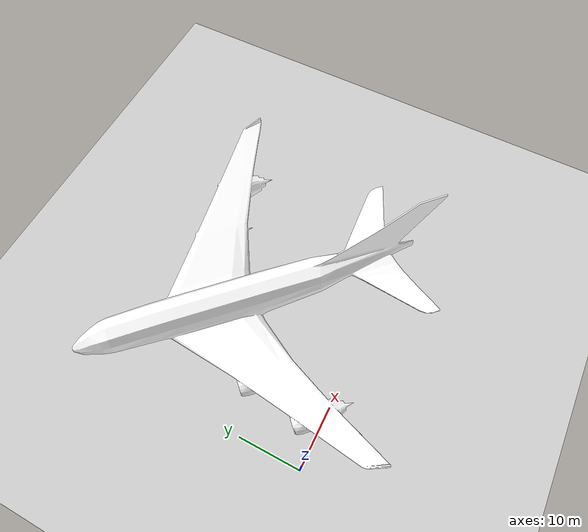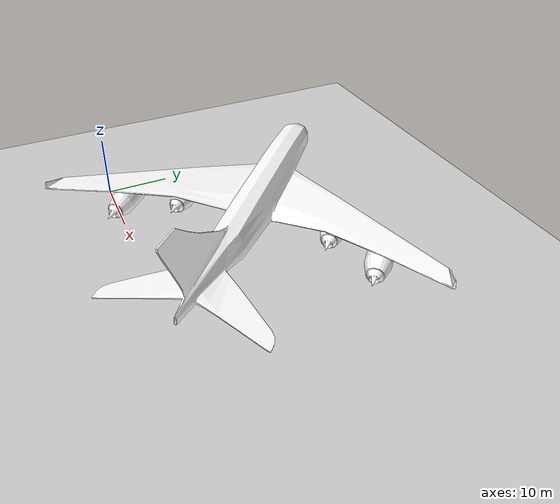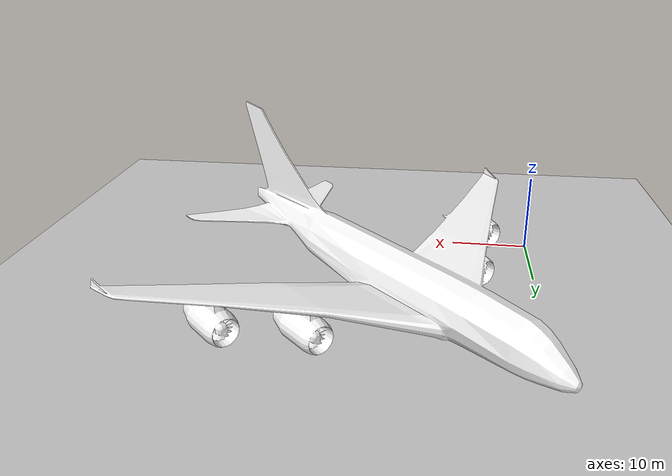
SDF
<?xml version="1.0" ?>
<sdf version="1.6">
  <world name="empty">
    <physics name="1ms" type="ignored">
      <max_step_size>0.001</max_step_size>
      <real_time_factor>1.0</real_time_factor>
    </physics>

    <plugin filename="ignition-gazebo-contact-system" name="gz::sim::systems::Contact" />
    <plugin filename="ignition-gazebo-imu-system" name="gz::sim::systems::Imu" />
    <plugin filename="ignition-gazebo-physics-system" name="gz::sim::systems::Physics" />
    <plugin filename="ignition-gazebo-scene-broadcaster-system"
      name="gz::sim::systems::SceneBroadcaster" />
    <plugin filename="ignition-gazebo-sensors-system" name="gz::sim::systems::Sensors" />
    <plugin filename="ignition-gazebo-user-commands-system" name="gz::sim::systems::UserCommands" />

    <spherical_coordinates>
      <surface_model>EARTH_WGS84</surface_model>
      <world_frame_orientation>ENU</world_frame_orientation>
      <latitude_deg>50.088384</latitude_deg>
      <longitude_deg>19.939128</longitude_deg>
      <elevation>0</elevation>
      <heading_deg>0</heading_deg>
    </spherical_coordinates>

    <light type="directional" name="sun">
      <cast_shadows>true</cast_shadows>
      <pose>0 0 10 0 0 0</pose>
      <diffuse>0.8 0.8 0.8 1</diffuse>
      <specular>0.2 0.2 0.2 1</specular>
      <attenuation>
        <range>1000</range>
        <constant>0.9</constant>
        <linear>0.01</linear>
        <quadratic>0.001</quadratic>
      </attenuation>
      <direction>-0.5 0.1 -0.9</direction>
    </light>

    <model name="ground_plane">
      <static>true</static>
      <link name="link">
        <collision name="collision">
          <geometry>
            <plane>
              <normal>0 0 1</normal>
              <size>100 100</size>
            </plane>
          </geometry>
        </collision>
        <visual name="visual">
          <geometry>
            <plane>
              <normal>0 0 1</normal>
              <size>100 100</size>
            </plane>
          </geometry>
          <material>
            <ambient>0.8 0.8 0.8 1</ambient>
            <diffuse>0.8 0.8 0.8 1</diffuse>
            <specular>0.8 0.8 0.8 1</specular>
          </material>
        </visual>
      </link>
    </model>

    <!-- Load the airplane model -->
    <include>
      <uri>model://Airplane/model.sdf</uri>
      <name>Airplane</name>
      <pose>17.5 20 0 0 0 -2.3561</pose>
    </include>

  </world>
</sdf>

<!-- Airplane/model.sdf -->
<sdf version='1.6'>
  <model name="Airplane">

    <static>true</static>

    <link name="link">

      <visual name="visual">
        <geometry>
          <mesh>
            <uri>model://Airplane/meshes/airplane.dae</uri>
          </mesh>
        </geometry>
        <material>
          <diffuse>1.0 1.0 1.0</diffuse>
          <specular>0.7 0.7 0.7</specular>
          <pbr>
            <metal>
              <albedo_map>model://Airplane/meshes/textures/diffuse.jpg</albedo_map>
              <normal_map>model://Airplane/meshes/textures/metal.jpg</normal_map>
              <metalness_map>model://Airplane/meshes/textures/normal.jpg</metalness_map>
              <roughness_map>model://Airplane/meshes/textures/rough.jpg</roughness_map>
              <environment_map>model://Airplane/meshes/textures/rural_asphalt_road_1k.dds</environment_map>
            </metal>
          </pbr>
        </material>
      </visual>

      <collision name="collision">
        <geometry>
          <mesh>
            <uri>model://Airplane/meshes/Airplane.STL</uri>
            <scale>1 1 1</scale>
          </mesh>
        </geometry>
        <max_contacts>10</max_contacts>
        <surface>
          <bounce/>
          <friction>
            <ode/>
          </friction>
          <contact>
            <ode/>
          </contact>
        </surface>
      </collision>

    </link>

  </model>
</sdf>
